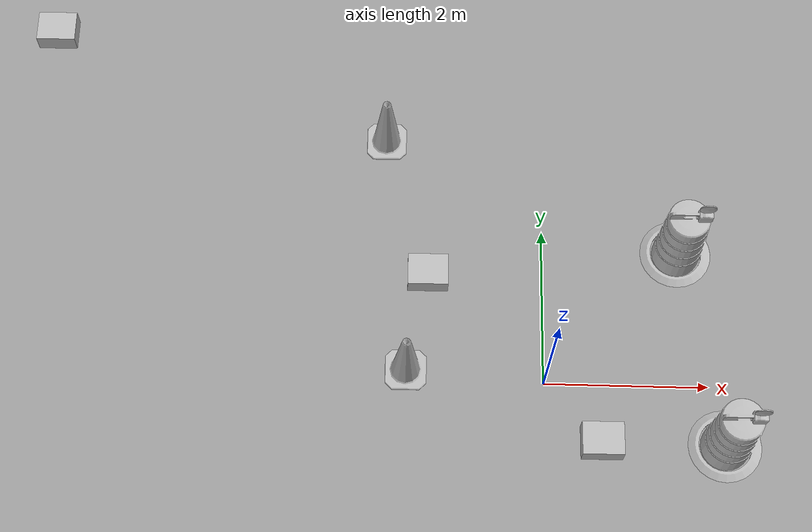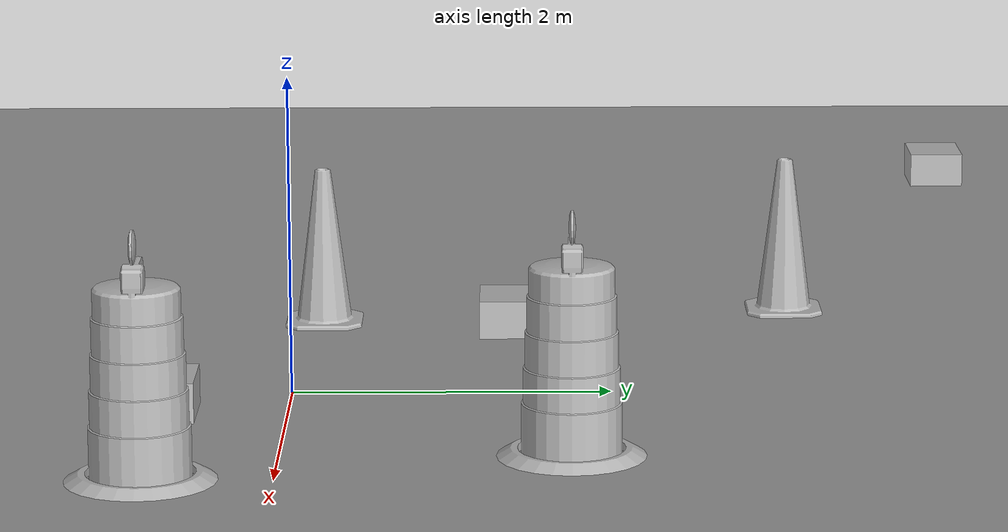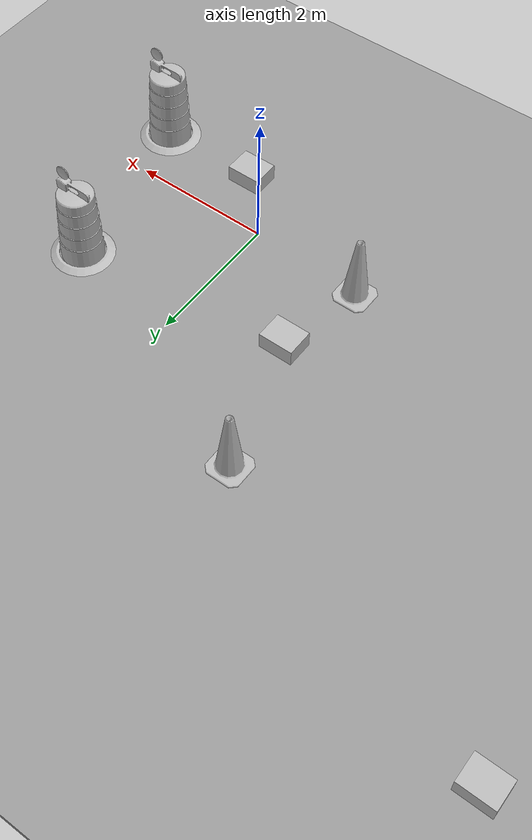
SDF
<sdf version="1.7">
 <world name="default">
  <light name="sun" type="directional">
   <pose>0 0 10 0 -0 0</pose>
   <diffuse>0.8 0.8 0.8 1</diffuse>
   <specular>0.2 0.2 0.2 1</specular>
   <attenuation>
    <range>1000</range>
    <constant>0.9</constant>
    <linear>0.01</linear>
    <quadratic>0.001</quadratic>
   </attenuation>
   <direction>-0.5 0.1 -0.9</direction>
   <spot><inner_angle>0</inner_angle><outer_angle>0</outer_angle><falloff>0</falloff></spot>
  </light>
  <model name="ground_plane">
   <static>1</static>
   <link name="link">
    <collision name="collision">
     <geometry><plane><normal>0 0 1</normal><size>100 100</size></plane></geometry>
     <surface><friction><ode><mu>100</mu><mu2>50</mu2></ode></friction></surface>
    </collision>
    <visual name="visual">
     <cast_shadows>0</cast_shadows>
     <geometry><plane><normal>0 0 1</normal><size>100 100</size></plane></geometry>
     <material>
      <script><uri>file://media/materials/scripts/gazebo.material</uri><name>Gazebo/Grey</name></script>
     </material>
    </visual>
   </link>
  </model>
  <gravity>0 0 -9.8</gravity>
  <magnetic_field>6e-06 2.3e-05 -4.2e-05</magnetic_field>
  <atmosphere type="adiabatic"/>
  <physics type="ode">
   <max_step_size>0.001</max_step_size>
   <real_time_factor>1</real_time_factor>
   <real_time_update_rate>1000</real_time_update_rate>
  </physics>
  <scene><ambient>0.4 0.4 0.4 1</ambient><background>0.7 0.7 0.7 1</background><shadows>1</shadows></scene>
  <audio><device>default</device></audio>
  <spherical_coordinates>
   <surface_model>EARTH_WGS84</surface_model>
   <latitude_deg>0</latitude_deg>
   <longitude_deg>0</longitude_deg>
   <elevation>0</elevation>
   <heading_deg>0</heading_deg>
  </spherical_coordinates>
  <model name="ground_plane_0">
   <static>1</static>
   <link name="link">
    <collision name="collision">
     <geometry><plane><normal>0 0 1</normal><size>100 100</size></plane></geometry>
     <surface><friction><ode><mu>100</mu><mu2>50</mu2></ode></friction></surface>
    </collision>
    <visual name="visual">
     <cast_shadows>0</cast_shadows>
     <geometry><plane><normal>0 0 1</normal><size>100 100</size></plane></geometry>
     <material>
      <script><uri>file://media/materials/scripts/gazebo.material</uri><name>Gazebo/Grey</name></script>
     </material>
    </visual>
   </link>
   <pose>-17.8075 5.14622 0 0 -0 0</pose>
  </model>
  <model name="Construction Cone">
   <link name="link">
    <collision name="collision">
     <geometry>
      <mesh><scale>10 10 10</scale><uri>model://construction_cone/meshes/construction_cone.dae</uri></mesh>
     </geometry>
    </collision>
    <visual name="visual">
     <geometry>
      <mesh><scale>10 10 10</scale><uri>model://construction_cone/meshes/construction_cone.dae</uri></mesh>
     </geometry>
    </visual>
    <inertial>
     <inertia><ixx>1</ixx><ixy>0</ixy><ixz>0</ixz><iyy>1</iyy><iyz>0</iyz><izz>1</izz></inertia>
     <mass>1</mass>
    </inertial>
   </link>
   <pose>-1.68402 0.125345 -0 0 -1e-06 0</pose>
  </model>
  <model name="Construction Barrel">
   <link name="link">
    <inertial>
     <pose>0 0 0.4 0 -0 0</pose>
     <mass>500</mass>
     <inertia><ixx>51.2096</ixx><iyy>51.2096</iyy><izz>25</izz><ixy>0</ixy><ixz>0</ixz><iyz>0</iyz></inertia>
    </inertial>
    <collision name="collision">
     <geometry><mesh><uri>model://construction_barrel/meshes/construction_barrel.dae</uri></mesh></geometry>
    </collision>
    <visual name="visual">
     <geometry><mesh><uri>model://construction_barrel/meshes/construction_barrel.dae</uri></mesh></geometry>
    </visual>
   </link>
   <pose>1.66607 1.72616 -0 0 0 -5.9e-05</pose>
  </model>
  <model name="cardboard_box">
   <pose>0.674868 -0.74182 0.149 0 -0 0</pose>
   <link name="link">
    <inertial>
     <mass>2</mass>
     <inertia>
      <ixx>0.0416667</ixx>
      <ixy>0</ixy>
      <ixz>0</ixz>
      <iyy>0.0566667</iyy>
      <iyz>0</iyz>
      <izz>0.0683333</izz>
     </inertia>
    </inertial>
    <collision name="collision">
     <geometry><box><size>0.5 0.4 0.3</size></box></geometry>
     <surface>
      <friction><ode><mu>1</mu><mu2>1</mu2></ode></friction>
      <contact><ode><kp>1e+07</kp><kd>1</kd><min_depth>0.001</min_depth><max_vel>0.1</max_vel></ode></contact>
     </surface>
    </collision>
    <visual name="visual">
     <pose>0 0 -0.15 0 -0 0</pose>
     <geometry>
      <mesh><uri>model://cardboard_box/meshes/cardboard_box.dae</uri><scale>1.25932 1.00745 0.755591</scale></mesh>
     </geometry>
    </visual>
   </link>
  </model>
  <model name="cardboard_box_0">
   <pose>-6.36596 4.70081 0.149 0 -0 0</pose>
   <link name="link">
    <inertial>
     <mass>2</mass>
     <inertia>
      <ixx>0.0416667</ixx>
      <ixy>0</ixy>
      <ixz>0</ixz>
      <iyy>0.0566667</iyy>
      <iyz>0</iyz>
      <izz>0.0683333</izz>
     </inertia>
    </inertial>
    <collision name="collision">
     <geometry><box><size>0.5 0.4 0.3</size></box></geometry>
     <surface>
      <friction><ode><mu>1</mu><mu2>1</mu2></ode></friction>
      <contact><ode><kp>1e+07</kp><kd>1</kd><min_depth>0.001</min_depth><max_vel>0.1</max_vel></ode></contact>
     </surface>
    </collision>
    <visual name="visual">
     <pose>0 0 -0.15 0 -0 0</pose>
     <geometry>
      <mesh><uri>model://cardboard_box/meshes/cardboard_box.dae</uri><scale>1.25932 1.00745 0.755591</scale></mesh>
     </geometry>
    </visual>
   </link>
  </model>
  <model name="Construction Cone_0">
   <link name="link">
    <collision name="collision">
     <geometry>
      <mesh><scale>10 10 10</scale><uri>model://construction_cone/meshes/construction_cone.dae</uri></mesh>
     </geometry>
    </collision>
    <visual name="visual">
     <geometry>
      <mesh><scale>10 10 10</scale><uri>model://construction_cone/meshes/construction_cone.dae</uri></mesh>
     </geometry>
    </visual>
    <inertial>
     <inertia><ixx>1</ixx><ixy>0</ixy><ixz>0</ixz><iyy>1</iyy><iyz>0</iyz><izz>1</izz></inertia>
     <mass>1</mass>
    </inertial>
   </link>
   <pose>-1.9813 3.21565 -0 0 -1e-06 0</pose>
  </model>
  <model name="cardboard_box_1">
   <pose>-1.43017 1.36516 0.149212 0 -0 0</pose>
   <link name="link">
    <inertial>
     <mass>2</mass>
     <inertia>
      <ixx>0.0416667</ixx>
      <ixy>0</ixy>
      <ixz>0</ixz>
      <iyy>0.0566667</iyy>
      <iyz>0</iyz>
      <izz>0.0683333</izz>
     </inertia>
    </inertial>
    <collision name="collision">
     <geometry><box><size>0.5 0.4 0.3</size></box></geometry>
     <surface>
      <friction><ode><mu>1</mu><mu2>1</mu2></ode></friction>
      <contact><ode><kp>1e+07</kp><kd>1</kd><min_depth>0.001</min_depth><max_vel>0.1</max_vel></ode></contact>
     </surface>
    </collision>
    <visual name="visual">
     <pose>0 0 -0.15 0 -0 0</pose>
     <geometry>
      <mesh><uri>model://cardboard_box/meshes/cardboard_box.dae</uri><scale>1.25932 1.00745 0.755591</scale></mesh>
     </geometry>
    </visual>
   </link>
  </model>
  <model name="Construction Barrel_0">
   <link name="link">
    <inertial>
     <pose>0 0 0.4 0 -0 0</pose>
     <mass>500</mass>
     <inertia><ixx>51.2096</ixx><iyy>51.2096</iyy><izz>25</izz><ixy>0</ixy><ixz>0</ixz><iyz>0</iyz></inertia>
    </inertial>
    <collision name="collision">
     <geometry><mesh><uri>model://construction_barrel/meshes/construction_barrel.dae</uri></mesh></geometry>
    </collision>
    <visual name="visual">
     <geometry><mesh><uri>model://construction_barrel/meshes/construction_barrel.dae</uri></mesh></geometry>
    </visual>
   </link>
   <pose>2.15064 -0.746476 -1e-06 1e-06 -1e-06 -1.8e-05</pose>
  </model>
 </world>
</sdf>
